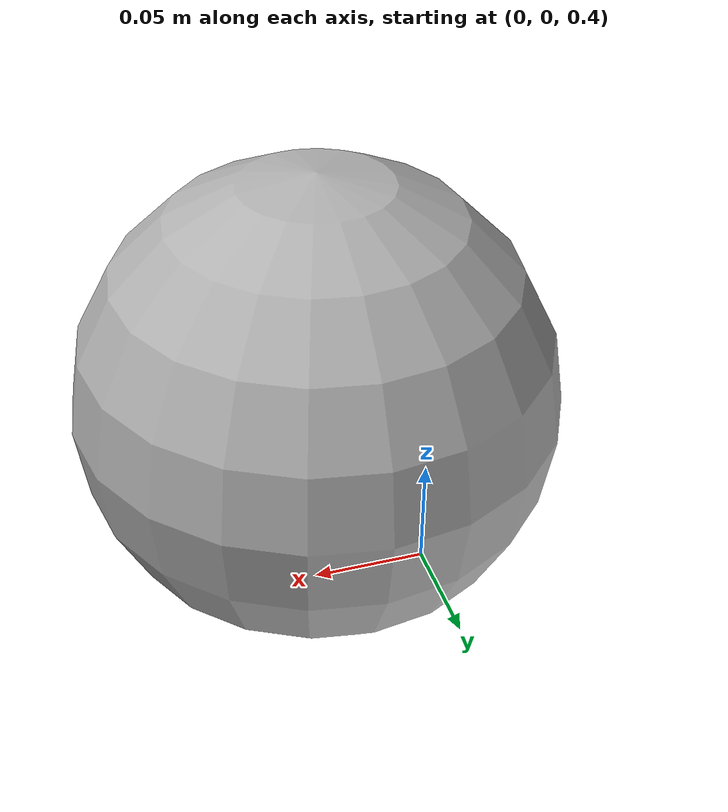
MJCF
<mujoco>
    <option gravity = "0 0 -9.81" timestep = "0.002"/>
	<worldbody>
        <light diffuse=".5 .5 .5" pos="0 0 2" dir="0 0 -1"/>
		<geom type="plane" size="1 1 0.1" rgba=".9 0 0 1"/>

        <body pos="0.05 0 0.5">
            <joint type = "free"/>
            <geom type = "sphere" size=".1" rgba=".7 .7 .7 1" mass = "1"/>

        </body>

	</worldbody>
</mujoco>
